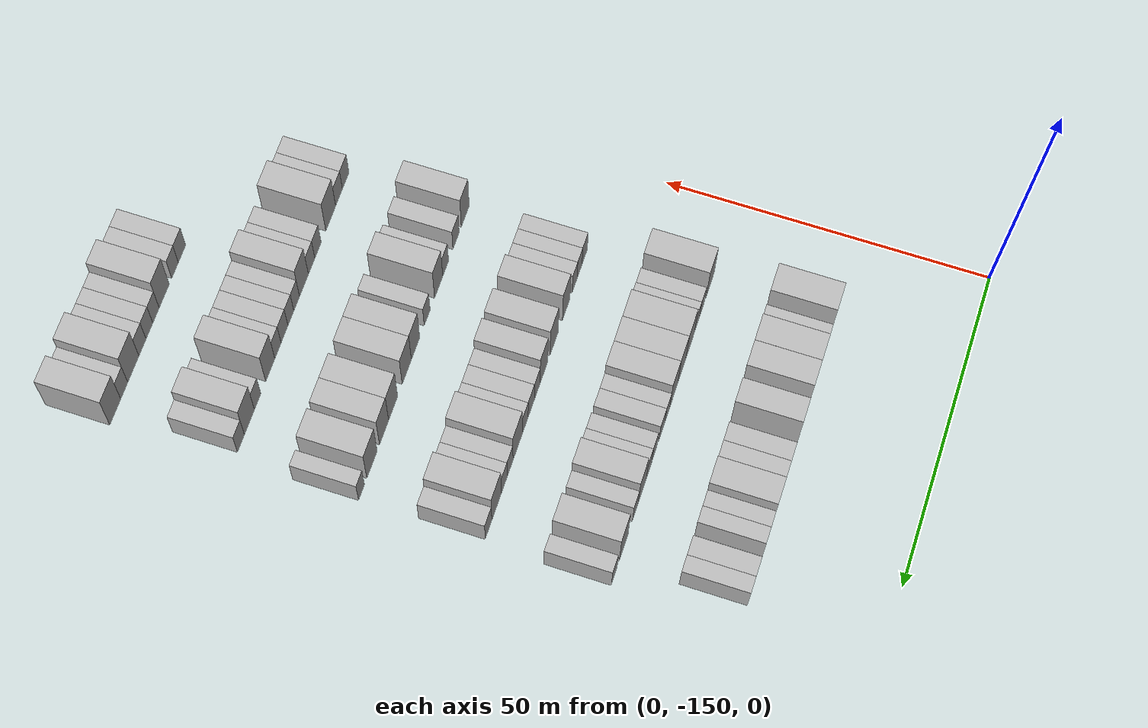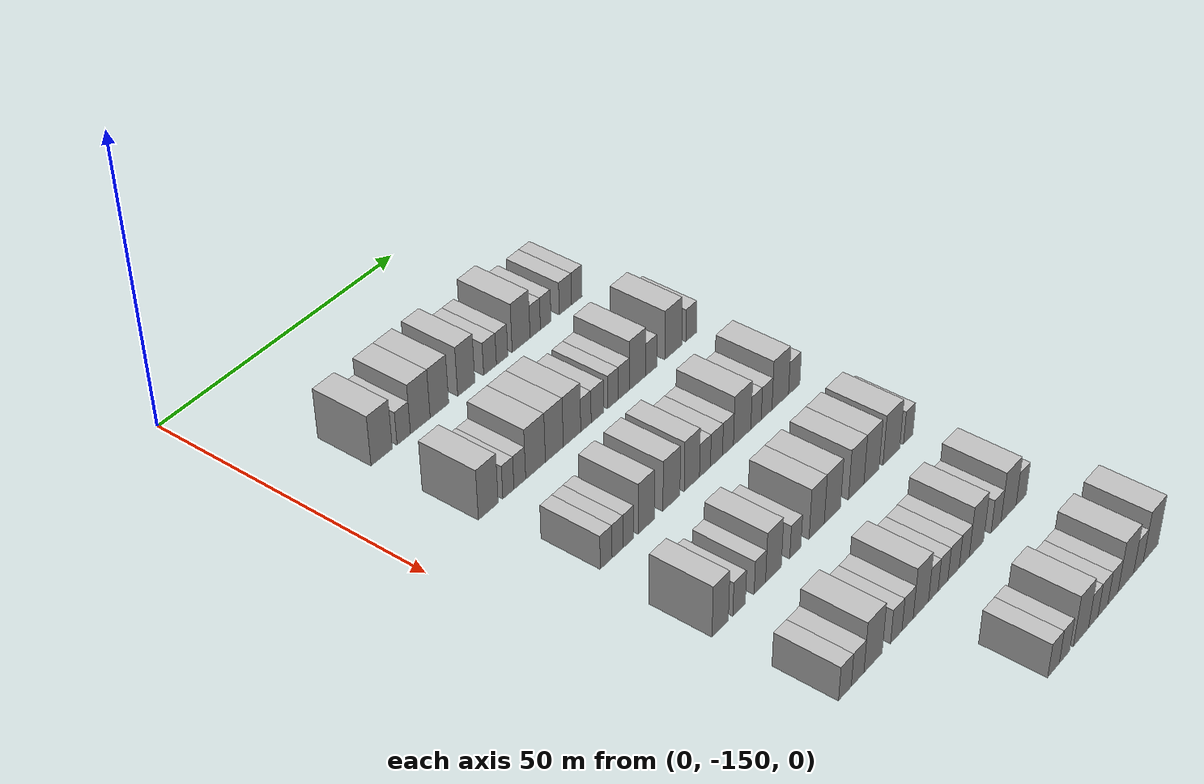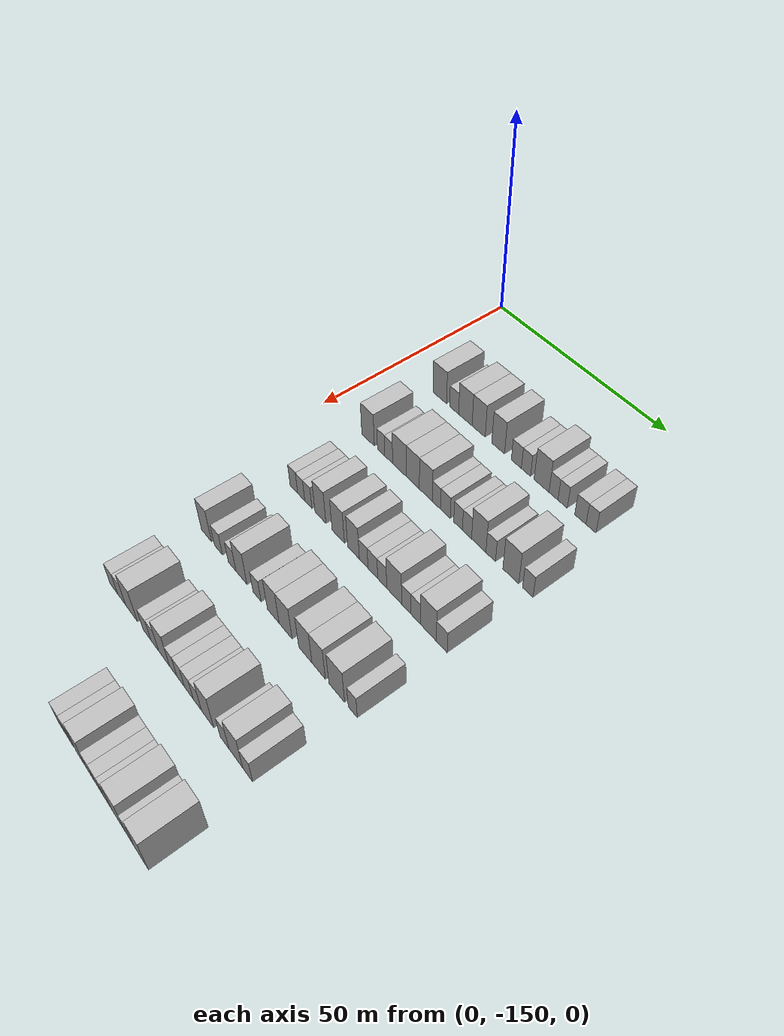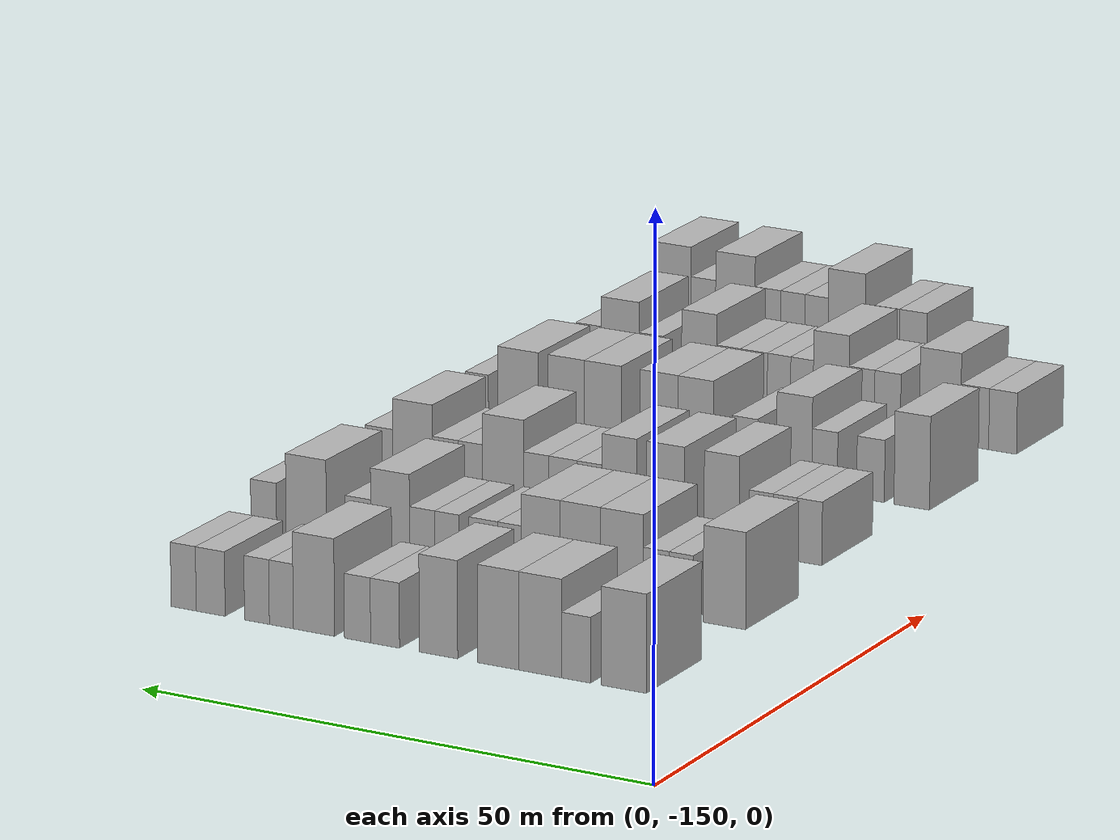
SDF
<sdf version="1.6">
 <world name="default">
  <model name="building_47">
   <static>1</static>
   <pose>25.0000 -136.1746 0 0.000000 0.000000 0.000000</pose>
   <link name="link">
    <pose>0 0 4.50 0 0 0</pose>
    <collision name="collision"><geometry><box><size>10.0000 4.4687 9.0000</size></box></geometry></collision>
    <visual name="visual">
     <cast_shadows>0</cast_shadows>
     <geometry><box><size>10.0000 4.4687 9.0000</size></box></geometry>
     <material>
      <script>
       <uri>model://HANNAS_wall/materials/scripts</uri>
       <uri>model://HANNAS_wall/materials/textures</uri>
       <name>vrc/HANNAS_wall</name>
      </script>
     </material>
    </visual>
   </link>
  </model>
  <model name="building_48">
   <static>1</static>
   <pose>25.0000 -131.5015 0 0.000000 0.000000 0.000000</pose>
   <link name="link">
    <pose>0 0 3.00 0 0 0</pose>
    <collision name="collision"><geometry><box><size>10.0000 2.8775 6.0000</size></box></geometry></collision>
    <visual name="visual">
     <cast_shadows>0</cast_shadows>
     <geometry><box><size>10.0000 2.8775 6.0000</size></box></geometry>
     <material>
      <script>
       <uri>model://HANNAS_wall/materials/scripts</uri>
       <uri>model://HANNAS_wall/materials/textures</uri>
       <name>vrc/HANNAS_wall</name>
      </script>
     </material>
    </visual>
   </link>
  </model>
  <model name="building_49">
   <static>1</static>
   <pose>25.0000 -127.9309 0 0.000000 0.000000 0.000000</pose>
   <link name="link">
    <pose>0 0 4.50 0 0 0</pose>
    <collision name="collision"><geometry><box><size>10.0000 4.2637 9.0000</size></box></geometry></collision>
    <visual name="visual">
     <cast_shadows>0</cast_shadows>
     <geometry><box><size>10.0000 4.2637 9.0000</size></box></geometry>
     <material>
      <script>
       <uri>model://HANNAS_wall/materials/scripts</uri>
       <uri>model://HANNAS_wall/materials/textures</uri>
       <name>vrc/HANNAS_wall</name>
      </script>
     </material>
    </visual>
   </link>
  </model>
  <model name="building_50">
   <static>1</static>
   <pose>25.0000 -123.7651 0 0.000000 0.000000 0.000000</pose>
   <link name="link">
    <pose>0 0 4.50 0 0 0</pose>
    <collision name="collision"><geometry><box><size>10.0000 4.0677 9.0000</size></box></geometry></collision>
    <visual name="visual">
     <cast_shadows>0</cast_shadows>
     <geometry><box><size>10.0000 4.0677 9.0000</size></box></geometry>
     <material>
      <script>
       <uri>model://HANNAS_wall/materials/scripts</uri>
       <uri>model://HANNAS_wall/materials/textures</uri>
       <name>vrc/HANNAS_wall</name>
      </script>
     </material>
    </visual>
   </link>
  </model>
  <model name="building_51">
   <static>1</static>
   <pose>25.0000 -117.8076 0 0.000000 0.000000 0.000000</pose>
   <link name="link">
    <pose>0 0 4.50 0 0 0</pose>
    <collision name="collision"><geometry><box><size>10.0000 3.8474 9.0000</size></box></geometry></collision>
    <visual name="visual">
     <cast_shadows>0</cast_shadows>
     <geometry><box><size>10.0000 3.8474 9.0000</size></box></geometry>
     <material>
      <script>
       <uri>model://HANNAS_wall/materials/scripts</uri>
       <uri>model://HANNAS_wall/materials/textures</uri>
       <name>vrc/HANNAS_wall</name>
      </script>
     </material>
    </visual>
   </link>
  </model>
  <model name="building_52">
   <static>1</static>
   <pose>25.0000 -112.4222 0 0.000000 0.000000 0.000000</pose>
   <link name="link">
    <pose>0 0 3.00 0 0 0</pose>
    <collision name="collision"><geometry><box><size>10.0000 2.9233 6.0000</size></box></geometry></collision>
    <visual name="visual">
     <cast_shadows>0</cast_shadows>
     <geometry><box><size>10.0000 2.9233 6.0000</size></box></geometry>
     <material>
      <script>
       <uri>model://HANNAS_wall/materials/scripts</uri>
       <uri>model://HANNAS_wall/materials/textures</uri>
       <name>vrc/HANNAS_wall</name>
      </script>
     </material>
    </visual>
   </link>
  </model>
  <model name="building_53">
   <static>1</static>
   <pose>25.0000 -109.6368 0 0.000000 0.000000 0.000000</pose>
   <link name="link">
    <pose>0 0 3.00 0 0 0</pose>
    <collision name="collision"><geometry><box><size>10.0000 2.6475 6.0000</size></box></geometry></collision>
    <visual name="visual">
     <cast_shadows>0</cast_shadows>
     <geometry><box><size>10.0000 2.6475 6.0000</size></box></geometry>
     <material>
      <script>
       <uri>model://HANNAS_wall/materials/scripts</uri>
       <uri>model://HANNAS_wall/materials/textures</uri>
       <name>vrc/HANNAS_wall</name>
      </script>
     </material>
    </visual>
   </link>
  </model>
  <model name="building_54">
   <static>1</static>
   <pose>25.0000 -105.2102 0 0.000000 0.000000 0.000000</pose>
   <link name="link">
    <pose>0 0 4.50 0 0 0</pose>
    <collision name="collision"><geometry><box><size>10.0000 4.2057 9.0000</size></box></geometry></collision>
    <visual name="visual">
     <cast_shadows>0</cast_shadows>
     <geometry><box><size>10.0000 4.2057 9.0000</size></box></geometry>
     <material>
      <script>
       <uri>model://HANNAS_wall/materials/scripts</uri>
       <uri>model://HANNAS_wall/materials/textures</uri>
       <name>vrc/HANNAS_wall</name>
      </script>
     </material>
    </visual>
   </link>
  </model>
  <model name="building_55">
   <static>1</static>
   <pose>25.0000 -101.8766 0 0.000000 0.000000 0.000000</pose>
   <link name="link">
    <pose>0 0 3.00 0 0 0</pose>
    <collision name="collision"><geometry><box><size>10.0000 2.4616 6.0000</size></box></geometry></collision>
    <visual name="visual">
     <cast_shadows>0</cast_shadows>
     <geometry><box><size>10.0000 2.4616 6.0000</size></box></geometry>
     <material>
      <script>
       <uri>model://HANNAS_wall/materials/scripts</uri>
       <uri>model://HANNAS_wall/materials/textures</uri>
       <name>vrc/HANNAS_wall</name>
      </script>
     </material>
    </visual>
   </link>
  </model>
  <model name="building_56">
   <static>1</static>
   <pose>25.0000 -99.3721 0 0.000000 0.000000 0.000000</pose>
   <link name="link">
    <pose>0 0 3.00 0 0 0</pose>
    <collision name="collision"><geometry><box><size>10.0000 2.5473 6.0000</size></box></geometry></collision>
    <visual name="visual">
     <cast_shadows>0</cast_shadows>
     <geometry><box><size>10.0000 2.5473 6.0000</size></box></geometry>
     <material>
      <script>
       <uri>model://HANNAS_wall/materials/scripts</uri>
       <uri>model://HANNAS_wall/materials/textures</uri>
       <name>vrc/HANNAS_wall</name>
      </script>
     </material>
    </visual>
   </link>
  </model>
  <model name="building_57">
   <static>1</static>
   <pose>25.0000 -94.6043 0 0.000000 0.000000 0.000000</pose>
   <link name="link">
    <pose>0 0 3.00 0 0 0</pose>
    <collision name="collision"><geometry><box><size>10.0000 2.9883 6.0000</size></box></geometry></collision>
    <visual name="visual">
     <cast_shadows>0</cast_shadows>
     <geometry><box><size>10.0000 2.9883 6.0000</size></box></geometry>
     <material>
      <script>
       <uri>model://HANNAS_wall/materials/scripts</uri>
       <uri>model://HANNAS_wall/materials/textures</uri>
       <name>vrc/HANNAS_wall</name>
      </script>
     </material>
    </visual>
   </link>
  </model>
  <model name="building_58">
   <static>1</static>
   <pose>25.0000 -91.8131 0 0.000000 0.000000 0.000000</pose>
   <link name="link">
    <pose>0 0 3.00 0 0 0</pose>
    <collision name="collision"><geometry><box><size>10.0000 2.5943 6.0000</size></box></geometry></collision>
    <visual name="visual">
     <cast_shadows>0</cast_shadows>
     <geometry><box><size>10.0000 2.5943 6.0000</size></box></geometry>
     <material>
      <script>
       <uri>model://HANNAS_wall/materials/scripts</uri>
       <uri>model://HANNAS_wall/materials/textures</uri>
       <name>vrc/HANNAS_wall</name>
      </script>
     </material>
    </visual>
   </link>
  </model>
  <model name="building_231">
   <static>1</static>
   <pose>44.0000 -135.8813 0 0.000000 0.000000 0.000000</pose>
   <link name="link">
    <pose>0 0 4.50 0 0 0</pose>
    <collision name="collision"><geometry><box><size>10.0000 4.2236 9.0000</size></box></geometry></collision>
    <visual name="visual">
     <cast_shadows>0</cast_shadows>
     <geometry><box><size>10.0000 4.2236 9.0000</size></box></geometry>
     <material>
      <script>
       <uri>model://HANNAS_wall/materials/scripts</uri>
       <uri>model://HANNAS_wall/materials/textures</uri>
       <name>vrc/HANNAS_wall</name>
      </script>
     </material>
    </visual>
   </link>
  </model>
  <model name="building_232">
   <static>1</static>
   <pose>44.0000 -131.5618 0 0.000000 0.000000 0.000000</pose>
   <link name="link">
    <pose>0 0 3.00 0 0 0</pose>
    <collision name="collision"><geometry><box><size>10.0000 2.4153 6.0000</size></box></geometry></collision>
    <visual name="visual">
     <cast_shadows>0</cast_shadows>
     <geometry><box><size>10.0000 2.4153 6.0000</size></box></geometry>
     <material>
      <script>
       <uri>model://HANNAS_wall/materials/scripts</uri>
       <uri>model://HANNAS_wall/materials/textures</uri>
       <name>vrc/HANNAS_wall</name>
      </script>
     </material>
    </visual>
   </link>
  </model>
  <model name="building_233">
   <static>1</static>
   <pose>44.0000 -129.0688 0 0.000000 0.000000 0.000000</pose>
   <link name="link">
    <pose>0 0 3.00 0 0 0</pose>
    <collision name="collision"><geometry><box><size>10.0000 2.5708 6.0000</size></box></geometry></collision>
    <visual name="visual">
     <cast_shadows>0</cast_shadows>
     <geometry><box><size>10.0000 2.5708 6.0000</size></box></geometry>
     <material>
      <script>
       <uri>model://HANNAS_wall/materials/scripts</uri>
       <uri>model://HANNAS_wall/materials/textures</uri>
       <name>vrc/HANNAS_wall</name>
      </script>
     </material>
    </visual>
   </link>
  </model>
  <model name="building_234">
   <static>1</static>
   <pose>44.0000 -125.5930 0 0.000000 0.000000 0.000000</pose>
   <link name="link">
    <pose>0 0 4.50 0 0 0</pose>
    <collision name="collision"><geometry><box><size>10.0000 4.3806 9.0000</size></box></geometry></collision>
    <visual name="visual">
     <cast_shadows>0</cast_shadows>
     <geometry><box><size>10.0000 4.3806 9.0000</size></box></geometry>
     <material>
      <script>
       <uri>model://HANNAS_wall/materials/scripts</uri>
       <uri>model://HANNAS_wall/materials/textures</uri>
       <name>vrc/HANNAS_wall</name>
      </script>
     </material>
    </visual>
   </link>
  </model>
  <model name="building_235">
   <static>1</static>
   <pose>44.0000 -121.3850 0 0.000000 0.000000 0.000000</pose>
   <link name="link">
    <pose>0 0 4.50 0 0 0</pose>
    <collision name="collision"><geometry><box><size>10.0000 4.0355 9.0000</size></box></geometry></collision>
    <visual name="visual">
     <cast_shadows>0</cast_shadows>
     <geometry><box><size>10.0000 4.0355 9.0000</size></box></geometry>
     <material>
      <script>
       <uri>model://HANNAS_wall/materials/scripts</uri>
       <uri>model://HANNAS_wall/materials/textures</uri>
       <name>vrc/HANNAS_wall</name>
      </script>
     </material>
    </visual>
   </link>
  </model>
  <model name="building_236">
   <static>1</static>
   <pose>44.0000 -117.3735 0 0.000000 0.000000 0.000000</pose>
   <link name="link">
    <pose>0 0 4.50 0 0 0</pose>
    <collision name="collision"><geometry><box><size>10.0000 3.9875 9.0000</size></box></geometry></collision>
    <visual name="visual">
     <cast_shadows>0</cast_shadows>
     <geometry><box><size>10.0000 3.9875 9.0000</size></box></geometry>
     <material>
      <script>
       <uri>model://HANNAS_wall/materials/scripts</uri>
       <uri>model://HANNAS_wall/materials/textures</uri>
       <name>vrc/HANNAS_wall</name>
      </script>
     </material>
    </visual>
   </link>
  </model>
  <model name="building_237">
   <static>1</static>
   <pose>44.0000 -114.1772 0 0.000000 0.000000 0.000000</pose>
   <link name="link">
    <pose>0 0 3.00 0 0 0</pose>
    <collision name="collision"><geometry><box><size>10.0000 2.4051 6.0000</size></box></geometry></collision>
    <visual name="visual">
     <cast_shadows>0</cast_shadows>
     <geometry><box><size>10.0000 2.4051 6.0000</size></box></geometry>
     <material>
      <script>
       <uri>model://HANNAS_wall/materials/scripts</uri>
       <uri>model://HANNAS_wall/materials/textures</uri>
       <name>vrc/HANNAS_wall</name>
      </script>
     </material>
    </visual>
   </link>
  </model>
  <model name="building_238">
   <static>1</static>
   <pose>44.0000 -111.5134 0 0.000000 0.000000 0.000000</pose>
   <link name="link">
    <pose>0 0 3.00 0 0 0</pose>
    <collision name="collision"><geometry><box><size>10.0000 2.9225 6.0000</size></box></geometry></collision>
    <visual name="visual">
     <cast_shadows>0</cast_shadows>
     <geometry><box><size>10.0000 2.9225 6.0000</size></box></geometry>
     <material>
      <script>
       <uri>model://HANNAS_wall/materials/scripts</uri>
       <uri>model://HANNAS_wall/materials/textures</uri>
       <name>vrc/HANNAS_wall</name>
      </script>
     </material>
    </visual>
   </link>
  </model>
  <model name="building_239">
   <static>1</static>
   <pose>44.0000 -107.8048 0 0.000000 0.000000 0.000000</pose>
   <link name="link">
    <pose>0 0 3.00 0 0 0</pose>
    <collision name="collision"><geometry><box><size>10.0000 2.4946 6.0000</size></box></geometry></collision>
    <visual name="visual">
     <cast_shadows>0</cast_shadows>
     <geometry><box><size>10.0000 2.4946 6.0000</size></box></geometry>
     <material>
      <script>
       <uri>model://HANNAS_wall/materials/scripts</uri>
       <uri>model://HANNAS_wall/materials/textures</uri>
       <name>vrc/HANNAS_wall</name>
      </script>
     </material>
    </visual>
   </link>
  </model>
  <model name="building_240">
   <static>1</static>
   <pose>44.0000 -105.2405 0 0.000000 0.000000 0.000000</pose>
   <link name="link">
    <pose>0 0 3.00 0 0 0</pose>
    <collision name="collision"><geometry><box><size>10.0000 2.6340 6.0000</size></box></geometry></collision>
    <visual name="visual">
     <cast_shadows>0</cast_shadows>
     <geometry><box><size>10.0000 2.6340 6.0000</size></box></geometry>
     <material>
      <script>
       <uri>model://HANNAS_wall/materials/scripts</uri>
       <uri>model://HANNAS_wall/materials/textures</uri>
       <name>vrc/HANNAS_wall</name>
      </script>
     </material>
    </visual>
   </link>
  </model>
  <model name="building_241">
   <static>1</static>
   <pose>44.0000 -101.9137 0 0.000000 0.000000 0.000000</pose>
   <link name="link">
    <pose>0 0 4.50 0 0 0</pose>
    <collision name="collision"><geometry><box><size>10.0000 4.0194 9.0000</size></box></geometry></collision>
    <visual name="visual">
     <cast_shadows>0</cast_shadows>
     <geometry><box><size>10.0000 4.0194 9.0000</size></box></geometry>
     <material>
      <script>
       <uri>model://HANNAS_wall/materials/scripts</uri>
       <uri>model://HANNAS_wall/materials/textures</uri>
       <name>vrc/HANNAS_wall</name>
      </script>
     </material>
    </visual>
   </link>
  </model>
  <model name="building_242">
   <static>1</static>
   <pose>44.0000 -98.5847 0 0.000000 0.000000 0.000000</pose>
   <link name="link">
    <pose>0 0 3.00 0 0 0</pose>
    <collision name="collision"><geometry><box><size>10.0000 2.6387 6.0000</size></box></geometry></collision>
    <visual name="visual">
     <cast_shadows>0</cast_shadows>
     <geometry><box><size>10.0000 2.6387 6.0000</size></box></geometry>
     <material>
      <script>
       <uri>model://HANNAS_wall/materials/scripts</uri>
       <uri>model://HANNAS_wall/materials/textures</uri>
       <name>vrc/HANNAS_wall</name>
      </script>
     </material>
    </visual>
   </link>
  </model>
  <model name="building_243">
   <static>1</static>
   <pose>44.0000 -93.1488 0 0.000000 0.000000 0.000000</pose>
   <link name="link">
    <pose>0 0 4.50 0 0 0</pose>
    <collision name="collision"><geometry><box><size>10.0000 4.2332 9.0000</size></box></geometry></collision>
    <visual name="visual">
     <cast_shadows>0</cast_shadows>
     <geometry><box><size>10.0000 4.2332 9.0000</size></box></geometry>
     <material>
      <script>
       <uri>model://HANNAS_wall/materials/scripts</uri>
       <uri>model://HANNAS_wall/materials/textures</uri>
       <name>vrc/HANNAS_wall</name>
      </script>
     </material>
    </visual>
   </link>
  </model>
  <model name="building_244">
   <static>1</static>
   <pose>44.0000 -88.6784 0 0.000000 0.000000 0.000000</pose>
   <link name="link">
    <pose>0 0 3.00 0 0 0</pose>
    <collision name="collision"><geometry><box><size>10.0000 2.7074 6.0000</size></box></geometry></collision>
    <visual name="visual">
     <cast_shadows>0</cast_shadows>
     <geometry><box><size>10.0000 2.7074 6.0000</size></box></geometry>
     <material>
      <script>
       <uri>model://HANNAS_wall/materials/scripts</uri>
       <uri>model://HANNAS_wall/materials/textures</uri>
       <name>vrc/HANNAS_wall</name>
      </script>
     </material>
    </visual>
   </link>
  </model>
  <model name="building_391">
   <static>1</static>
   <pose>63.0000 -134.4250 0 0.000000 0.000000 0.000000</pose>
   <link name="link">
    <pose>0 0 3.00 0 0 0</pose>
    <collision name="collision"><geometry><box><size>10.0000 2.5891 6.0000</size></box></geometry></collision>
    <visual name="visual">
     <cast_shadows>0</cast_shadows>
     <geometry><box><size>10.0000 2.5891 6.0000</size></box></geometry>
     <material>
      <script>
       <uri>model://HANNAS_wall/materials/scripts</uri>
       <uri>model://HANNAS_wall/materials/textures</uri>
       <name>vrc/HANNAS_wall</name>
      </script>
     </material>
    </visual>
   </link>
  </model>
  <model name="building_392">
   <static>1</static>
   <pose>63.0000 -131.9280 0 0.000000 0.000000 0.000000</pose>
   <link name="link">
    <pose>0 0 3.00 0 0 0</pose>
    <collision name="collision"><geometry><box><size>10.0000 2.4050 6.0000</size></box></geometry></collision>
    <visual name="visual">
     <cast_shadows>0</cast_shadows>
     <geometry><box><size>10.0000 2.4050 6.0000</size></box></geometry>
     <material>
      <script>
       <uri>model://HANNAS_wall/materials/scripts</uri>
       <uri>model://HANNAS_wall/materials/textures</uri>
       <name>vrc/HANNAS_wall</name>
      </script>
     </material>
    </visual>
   </link>
  </model>
  <model name="building_393">
   <static>1</static>
   <pose>63.0000 -129.5147 0 0.000000 0.000000 0.000000</pose>
   <link name="link">
    <pose>0 0 3.00 0 0 0</pose>
    <collision name="collision"><geometry><box><size>10.0000 2.4215 6.0000</size></box></geometry></collision>
    <visual name="visual">
     <cast_shadows>0</cast_shadows>
     <geometry><box><size>10.0000 2.4215 6.0000</size></box></geometry>
     <material>
      <script>
       <uri>model://HANNAS_wall/materials/scripts</uri>
       <uri>model://HANNAS_wall/materials/textures</uri>
       <name>vrc/HANNAS_wall</name>
      </script>
     </material>
    </visual>
   </link>
  </model>
  <model name="building_394">
   <static>1</static>
   <pose>63.0000 -125.5038 0 0.000000 0.000000 0.000000</pose>
   <link name="link">
    <pose>0 0 4.50 0 0 0</pose>
    <collision name="collision"><geometry><box><size>10.0000 3.6003 9.0000</size></box></geometry></collision>
    <visual name="visual">
     <cast_shadows>0</cast_shadows>
     <geometry><box><size>10.0000 3.6003 9.0000</size></box></geometry>
     <material>
      <script>
       <uri>model://HANNAS_wall/materials/scripts</uri>
       <uri>model://HANNAS_wall/materials/textures</uri>
       <name>vrc/HANNAS_wall</name>
      </script>
     </material>
    </visual>
   </link>
  </model>
  <model name="building_395">
   <static>1</static>
   <pose>63.0000 -119.7378 0 0.000000 0.000000 0.000000</pose>
   <link name="link">
    <pose>0 0 4.50 0 0 0</pose>
    <collision name="collision"><geometry><box><size>10.0000 3.9316 9.0000</size></box></geometry></collision>
    <visual name="visual">
     <cast_shadows>0</cast_shadows>
     <geometry><box><size>10.0000 3.9316 9.0000</size></box></geometry>
     <material>
      <script>
       <uri>model://HANNAS_wall/materials/scripts</uri>
       <uri>model://HANNAS_wall/materials/textures</uri>
       <name>vrc/HANNAS_wall</name>
      </script>
     </material>
    </visual>
   </link>
  </model>
  <model name="building_396">
   <static>1</static>
   <pose>63.0000 -114.9706 0 0.000000 0.000000 0.000000</pose>
   <link name="link">
    <pose>0 0 4.50 0 0 0</pose>
    <collision name="collision"><geometry><box><size>10.0000 3.6030 9.0000</size></box></geometry></collision>
    <visual name="visual">
     <cast_shadows>0</cast_shadows>
     <geometry><box><size>10.0000 3.6030 9.0000</size></box></geometry>
     <material>
      <script>
       <uri>model://HANNAS_wall/materials/scripts</uri>
       <uri>model://HANNAS_wall/materials/textures</uri>
       <name>vrc/HANNAS_wall</name>
      </script>
     </material>
    </visual>
   </link>
  </model>
  <model name="building_397">
   <static>1</static>
   <pose>63.0000 -111.8527 0 0.000000 0.000000 0.000000</pose>
   <link name="link">
    <pose>0 0 3.00 0 0 0</pose>
    <collision name="collision"><geometry><box><size>10.0000 2.6327 6.0000</size></box></geometry></collision>
    <visual name="visual">
     <cast_shadows>0</cast_shadows>
     <geometry><box><size>10.0000 2.6327 6.0000</size></box></geometry>
     <material>
      <script>
       <uri>model://HANNAS_wall/materials/scripts</uri>
       <uri>model://HANNAS_wall/materials/textures</uri>
       <name>vrc/HANNAS_wall</name>
      </script>
     </material>
    </visual>
   </link>
  </model>
  <model name="building_398">
   <static>1</static>
   <pose>63.0000 -109.0857 0 0.000000 0.000000 0.000000</pose>
   <link name="link">
    <pose>0 0 3.00 0 0 0</pose>
    <collision name="collision"><geometry><box><size>10.0000 2.9013 6.0000</size></box></geometry></collision>
    <visual name="visual">
     <cast_shadows>0</cast_shadows>
     <geometry><box><size>10.0000 2.9013 6.0000</size></box></geometry>
     <material>
      <script>
       <uri>model://HANNAS_wall/materials/scripts</uri>
       <uri>model://HANNAS_wall/materials/textures</uri>
       <name>vrc/HANNAS_wall</name>
      </script>
     </material>
    </visual>
   </link>
  </model>
  <model name="building_399">
   <static>1</static>
   <pose>63.0000 -106.3085 0 0.000000 0.000000 0.000000</pose>
   <link name="link">
    <pose>0 0 3.00 0 0 0</pose>
    <collision name="collision"><geometry><box><size>10.0000 2.6530 6.0000</size></box></geometry></collision>
    <visual name="visual">
     <cast_shadows>0</cast_shadows>
     <geometry><box><size>10.0000 2.6530 6.0000</size></box></geometry>
     <material>
      <script>
       <uri>model://HANNAS_wall/materials/scripts</uri>
       <uri>model://HANNAS_wall/materials/textures</uri>
       <name>vrc/HANNAS_wall</name>
      </script>
     </material>
    </visual>
   </link>
  </model>
  <model name="building_400">
   <static>1</static>
   <pose>63.0000 -102.8347 0 0.000000 0.000000 0.000000</pose>
   <link name="link">
    <pose>0 0 4.50 0 0 0</pose>
    <collision name="collision"><geometry><box><size>10.0000 4.2946 9.0000</size></box></geometry></collision>
    <visual name="visual">
     <cast_shadows>0</cast_shadows>
     <geometry><box><size>10.0000 4.2946 9.0000</size></box></geometry>
     <material>
      <script>
       <uri>model://HANNAS_wall/materials/scripts</uri>
       <uri>model://HANNAS_wall/materials/textures</uri>
       <name>vrc/HANNAS_wall</name>
      </script>
     </material>
    </visual>
   </link>
  </model>
  <model name="building_401">
   <static>1</static>
   <pose>63.0000 -99.3781 0 0.000000 0.000000 0.000000</pose>
   <link name="link">
    <pose>0 0 3.00 0 0 0</pose>
    <collision name="collision"><geometry><box><size>10.0000 2.6185 6.0000</size></box></geometry></collision>
    <visual name="visual">
     <cast_shadows>0</cast_shadows>
     <geometry><box><size>10.0000 2.6185 6.0000</size></box></geometry>
     <material>
      <script>
       <uri>model://HANNAS_wall/materials/scripts</uri>
       <uri>model://HANNAS_wall/materials/textures</uri>
       <name>vrc/HANNAS_wall</name>
      </script>
     </material>
    </visual>
   </link>
  </model>
  <model name="building_402">
   <static>1</static>
   <pose>63.0000 -96.7208 0 0.000000 0.000000 0.000000</pose>
   <link name="link">
    <pose>0 0 3.00 0 0 0</pose>
    <collision name="collision"><geometry><box><size>10.0000 2.6960 6.0000</size></box></geometry></collision>
    <visual name="visual">
     <cast_shadows>0</cast_shadows>
     <geometry><box><size>10.0000 2.6960 6.0000</size></box></geometry>
     <material>
      <script>
       <uri>model://HANNAS_wall/materials/scripts</uri>
       <uri>model://HANNAS_wall/materials/textures</uri>
       <name>vrc/HANNAS_wall</name>
      </script>
     </material>
    </visual>
   </link>
  </model>
  <model name="building_403">
   <static>1</static>
   <pose>63.0000 -93.2519 0 0.000000 0.000000 0.000000</pose>
   <link name="link">
    <pose>0 0 4.50 0 0 0</pose>
    <collision name="collision"><geometry><box><size>10.0000 4.2417 9.0000</size></box></geometry></collision>
    <visual name="visual">
     <cast_shadows>0</cast_shadows>
     <geometry><box><size>10.0000 4.2417 9.0000</size></box></geometry>
     <material>
      <script>
       <uri>model://HANNAS_wall/materials/scripts</uri>
       <uri>model://HANNAS_wall/materials/textures</uri>
       <name>vrc/HANNAS_wall</name>
      </script>
     </material>
    </visual>
   </link>
  </model>
  <model name="building_404">
   <static>1</static>
   <pose>63.0000 -89.6615 0 0.000000 0.000000 0.000000</pose>
   <link name="link">
    <pose>0 0 3.00 0 0 0</pose>
    <collision name="collision"><geometry><box><size>10.0000 2.9391 6.0000</size></box></geometry></collision>
    <visual name="visual">
     <cast_shadows>0</cast_shadows>
     <geometry><box><size>10.0000 2.9391 6.0000</size></box></geometry>
     <material>
      <script>
       <uri>model://HANNAS_wall/materials/scripts</uri>
       <uri>model://HANNAS_wall/materials/textures</uri>
       <name>vrc/HANNAS_wall</name>
      </script>
     </material>
    </visual>
   </link>
  </model>
  <model name="building_579">
   <static>1</static>
   <pose>82.0000 -135.1922 0 0.000000 0.000000 0.000000</pose>
   <link name="link">
    <pose>0 0 4.50 0 0 0</pose>
    <collision name="collision"><geometry><box><size>10.0000 3.6546 9.0000</size></box></geometry></collision>
    <visual name="visual">
     <cast_shadows>0</cast_shadows>
     <geometry><box><size>10.0000 3.6546 9.0000</size></box></geometry>
     <material>
      <script>
       <uri>model://HANNAS_wall/materials/scripts</uri>
       <uri>model://HANNAS_wall/materials/textures</uri>
       <name>vrc/HANNAS_wall</name>
      </script>
     </material>
    </visual>
   </link>
  </model>
  <model name="building_580">
   <static>1</static>
   <pose>82.0000 -130.9351 0 0.000000 0.000000 0.000000</pose>
   <link name="link">
    <pose>0 0 3.00 0 0 0</pose>
    <collision name="collision"><geometry><box><size>10.0000 2.8596 6.0000</size></box></geometry></collision>
    <visual name="visual">
     <cast_shadows>0</cast_shadows>
     <geometry><box><size>10.0000 2.8596 6.0000</size></box></geometry>
     <material>
      <script>
       <uri>model://HANNAS_wall/materials/scripts</uri>
       <uri>model://HANNAS_wall/materials/textures</uri>
       <name>vrc/HANNAS_wall</name>
      </script>
     </material>
    </visual>
   </link>
  </model>
  <model name="building_581">
   <static>1</static>
   <pose>82.0000 -126.1864 0 0.000000 0.000000 0.000000</pose>
   <link name="link">
    <pose>0 0 3.00 0 0 0</pose>
    <collision name="collision"><geometry><box><size>10.0000 2.6378 6.0000</size></box></geometry></collision>
    <visual name="visual">
     <cast_shadows>0</cast_shadows>
     <geometry><box><size>10.0000 2.6378 6.0000</size></box></geometry>
     <material>
      <script>
       <uri>model://HANNAS_wall/materials/scripts</uri>
       <uri>model://HANNAS_wall/materials/textures</uri>
       <name>vrc/HANNAS_wall</name>
      </script>
     </material>
    </visual>
   </link>
  </model>
  <model name="building_582">
   <static>1</static>
   <pose>82.0000 -123.0183 0 0.000000 0.000000 0.000000</pose>
   <link name="link">
    <pose>0 0 4.50 0 0 0</pose>
    <collision name="collision"><geometry><box><size>10.0000 3.6986 9.0000</size></box></geometry></collision>
    <visual name="visual">
     <cast_shadows>0</cast_shadows>
     <geometry><box><size>10.0000 3.6986 9.0000</size></box></geometry>
     <material>
      <script>
       <uri>model://HANNAS_wall/materials/scripts</uri>
       <uri>model://HANNAS_wall/materials/textures</uri>
       <name>vrc/HANNAS_wall</name>
      </script>
     </material>
    </visual>
   </link>
  </model>
  <model name="building_583">
   <static>1</static>
   <pose>82.0000 -117.8411 0 0.000000 0.000000 0.000000</pose>
   <link name="link">
    <pose>0 0 3.00 0 0 0</pose>
    <collision name="collision"><geometry><box><size>10.0000 2.6558 6.0000</size></box></geometry></collision>
    <visual name="visual">
     <cast_shadows>0</cast_shadows>
     <geometry><box><size>10.0000 2.6558 6.0000</size></box></geometry>
     <material>
      <script>
       <uri>model://HANNAS_wall/materials/scripts</uri>
       <uri>model://HANNAS_wall/materials/textures</uri>
       <name>vrc/HANNAS_wall</name>
      </script>
     </material>
    </visual>
   </link>
  </model>
  <model name="building_584">
   <static>1</static>
   <pose>82.0000 -112.6621 0 0.000000 0.000000 0.000000</pose>
   <link name="link">
    <pose>0 0 4.50 0 0 0</pose>
    <collision name="collision"><geometry><box><size>10.0000 3.7021 9.0000</size></box></geometry></collision>
    <visual name="visual">
     <cast_shadows>0</cast_shadows>
     <geometry><box><size>10.0000 3.7021 9.0000</size></box></geometry>
     <material>
      <script>
       <uri>model://HANNAS_wall/materials/scripts</uri>
       <uri>model://HANNAS_wall/materials/textures</uri>
       <name>vrc/HANNAS_wall</name>
      </script>
     </material>
    </visual>
   </link>
  </model>
  <model name="building_585">
   <static>1</static>
   <pose>82.0000 -108.7966 0 0.000000 0.000000 0.000000</pose>
   <link name="link">
    <pose>0 0 4.50 0 0 0</pose>
    <collision name="collision"><geometry><box><size>10.0000 4.0289 9.0000</size></box></geometry></collision>
    <visual name="visual">
     <cast_shadows>0</cast_shadows>
     <geometry><box><size>10.0000 4.0289 9.0000</size></box></geometry>
     <material>
      <script>
       <uri>model://HANNAS_wall/materials/scripts</uri>
       <uri>model://HANNAS_wall/materials/textures</uri>
       <name>vrc/HANNAS_wall</name>
      </script>
     </material>
    </visual>
   </link>
  </model>
  <model name="building_586">
   <static>1</static>
   <pose>82.0000 -102.8180 0 0.000000 0.000000 0.000000</pose>
   <link name="link">
    <pose>0 0 4.50 0 0 0</pose>
    <collision name="collision"><geometry><box><size>10.0000 3.9284 9.0000</size></box></geometry></collision>
    <visual name="visual">
     <cast_shadows>0</cast_shadows>
     <geometry><box><size>10.0000 3.9284 9.0000</size></box></geometry>
     <material>
      <script>
       <uri>model://HANNAS_wall/materials/scripts</uri>
       <uri>model://HANNAS_wall/materials/textures</uri>
       <name>vrc/HANNAS_wall</name>
      </script>
     </material>
    </visual>
   </link>
  </model>
  <model name="building_587">
   <static>1</static>
   <pose>82.0000 -98.8968 0 0.000000 0.000000 0.000000</pose>
   <link name="link">
    <pose>0 0 4.50 0 0 0</pose>
    <collision name="collision"><geometry><box><size>10.0000 3.9139 9.0000</size></box></geometry></collision>
    <visual name="visual">
     <cast_shadows>0</cast_shadows>
     <geometry><box><size>10.0000 3.9139 9.0000</size></box></geometry>
     <material>
      <script>
       <uri>model://HANNAS_wall/materials/scripts</uri>
       <uri>model://HANNAS_wall/materials/textures</uri>
       <name>vrc/HANNAS_wall</name>
      </script>
     </material>
    </visual>
   </link>
  </model>
  <model name="building_588">
   <static>1</static>
   <pose>82.0000 -93.7325 0 0.000000 0.000000 0.000000</pose>
   <link name="link">
    <pose>0 0 4.50 0 0 0</pose>
    <collision name="collision"><geometry><box><size>10.0000 4.4146 9.0000</size></box></geometry></collision>
    <visual name="visual">
     <cast_shadows>0</cast_shadows>
     <geometry><box><size>10.0000 4.4146 9.0000</size></box></geometry>
     <material>
      <script>
       <uri>model://HANNAS_wall/materials/scripts</uri>
       <uri>model://HANNAS_wall/materials/textures</uri>
       <name>vrc/HANNAS_wall</name>
      </script>
     </material>
    </visual>
   </link>
  </model>
  <model name="building_589">
   <static>1</static>
   <pose>82.0000 -89.2812 0 0.000000 0.000000 0.000000</pose>
   <link name="link">
    <pose>0 0 3.00 0 0 0</pose>
    <collision name="collision"><geometry><box><size>10.0000 2.4881 6.0000</size></box></geometry></collision>
    <visual name="visual">
     <cast_shadows>0</cast_shadows>
     <geometry><box><size>10.0000 2.4881 6.0000</size></box></geometry>
     <material>
      <script>
       <uri>model://HANNAS_wall/materials/scripts</uri>
       <uri>model://HANNAS_wall/materials/textures</uri>
       <name>vrc/HANNAS_wall</name>
      </script>
     </material>
    </visual>
   </link>
  </model>
  <model name="building_747">
   <static>1</static>
   <pose>101.0000 -135.1483 0 0.000000 0.000000 0.000000</pose>
   <link name="link">
    <pose>0 0 3.00 0 0 0</pose>
    <collision name="collision"><geometry><box><size>10.0000 2.9073 6.0000</size></box></geometry></collision>
    <visual name="visual">
     <cast_shadows>0</cast_shadows>
     <geometry><box><size>10.0000 2.9073 6.0000</size></box></geometry>
     <material>
      <script>
       <uri>model://HANNAS_wall/materials/scripts</uri>
       <uri>model://HANNAS_wall/materials/textures</uri>
       <name>vrc/HANNAS_wall</name>
      </script>
     </material>
    </visual>
   </link>
  </model>
  <model name="building_748">
   <static>1</static>
   <pose>101.0000 -132.2162 0 0.000000 0.000000 0.000000</pose>
   <link name="link">
    <pose>0 0 3.00 0 0 0</pose>
    <collision name="collision"><geometry><box><size>10.0000 2.9568 6.0000</size></box></geometry></collision>
    <visual name="visual">
     <cast_shadows>0</cast_shadows>
     <geometry><box><size>10.0000 2.9568 6.0000</size></box></geometry>
     <material>
      <script>
       <uri>model://HANNAS_wall/materials/scripts</uri>
       <uri>model://HANNAS_wall/materials/textures</uri>
       <name>vrc/HANNAS_wall</name>
      </script>
     </material>
    </visual>
   </link>
  </model>
  <model name="building_749">
   <static>1</static>
   <pose>101.0000 -128.5789 0 0.000000 0.000000 0.000000</pose>
   <link name="link">
    <pose>0 0 4.50 0 0 0</pose>
    <collision name="collision"><geometry><box><size>10.0000 4.3178 9.0000</size></box></geometry></collision>
    <visual name="visual">
     <cast_shadows>0</cast_shadows>
     <geometry><box><size>10.0000 4.3178 9.0000</size></box></geometry>
     <material>
      <script>
       <uri>model://HANNAS_wall/materials/scripts</uri>
       <uri>model://HANNAS_wall/materials/textures</uri>
       <name>vrc/HANNAS_wall</name>
      </script>
     </material>
    </visual>
   </link>
  </model>
  <model name="building_750">
   <static>1</static>
   <pose>101.0000 -123.0429 0 0.000000 0.000000 0.000000</pose>
   <link name="link">
    <pose>0 0 3.00 0 0 0</pose>
    <collision name="collision"><geometry><box><size>10.0000 2.7542 6.0000</size></box></geometry></collision>
    <visual name="visual">
     <cast_shadows>0</cast_shadows>
     <geometry><box><size>10.0000 2.7542 6.0000</size></box></geometry>
     <material>
      <script>
       <uri>model://HANNAS_wall/materials/scripts</uri>
       <uri>model://HANNAS_wall/materials/textures</uri>
       <name>vrc/HANNAS_wall</name>
      </script>
     </material>
    </visual>
   </link>
  </model>
  <model name="building_751">
   <static>1</static>
   <pose>101.0000 -120.2976 0 0.000000 0.000000 0.000000</pose>
   <link name="link">
    <pose>0 0 3.00 0 0 0</pose>
    <collision name="collision"><geometry><box><size>10.0000 2.7364 6.0000</size></box></geometry></collision>
    <visual name="visual">
     <cast_shadows>0</cast_shadows>
     <geometry><box><size>10.0000 2.7364 6.0000</size></box></geometry>
     <material>
      <script>
       <uri>model://HANNAS_wall/materials/scripts</uri>
       <uri>model://HANNAS_wall/materials/textures</uri>
       <name>vrc/HANNAS_wall</name>
      </script>
     </material>
    </visual>
   </link>
  </model>
  <model name="building_752">
   <static>1</static>
   <pose>101.0000 -117.0365 0 0.000000 0.000000 0.000000</pose>
   <link name="link">
    <pose>0 0 4.50 0 0 0</pose>
    <collision name="collision"><geometry><box><size>10.0000 3.7858 9.0000</size></box></geometry></collision>
    <visual name="visual">
     <cast_shadows>0</cast_shadows>
     <geometry><box><size>10.0000 3.7858 9.0000</size></box></geometry>
     <material>
      <script>
       <uri>model://HANNAS_wall/materials/scripts</uri>
       <uri>model://HANNAS_wall/materials/textures</uri>
       <name>vrc/HANNAS_wall</name>
      </script>
     </material>
    </visual>
   </link>
  </model>
  <model name="building_753">
   <static>1</static>
   <pose>101.0000 -113.9356 0 0.000000 0.000000 0.000000</pose>
   <link name="link">
    <pose>0 0 3.00 0 0 0</pose>
    <collision name="collision"><geometry><box><size>10.0000 2.4160 6.0000</size></box></geometry></collision>
    <visual name="visual">
     <cast_shadows>0</cast_shadows>
     <geometry><box><size>10.0000 2.4160 6.0000</size></box></geometry>
     <material>
      <script>
       <uri>model://HANNAS_wall/materials/scripts</uri>
       <uri>model://HANNAS_wall/materials/textures</uri>
       <name>vrc/HANNAS_wall</name>
      </script>
     </material>
    </visual>
   </link>
  </model>
  <model name="building_754">
   <static>1</static>
   <pose>101.0000 -111.4774 0 0.000000 0.000000 0.000000</pose>
   <link name="link">
    <pose>0 0 3.00 0 0 0</pose>
    <collision name="collision"><geometry><box><size>10.0000 2.5004 6.0000</size></box></geometry></collision>
    <visual name="visual">
     <cast_shadows>0</cast_shadows>
     <geometry><box><size>10.0000 2.5004 6.0000</size></box></geometry>
     <material>
      <script>
       <uri>model://HANNAS_wall/materials/scripts</uri>
       <uri>model://HANNAS_wall/materials/textures</uri>
       <name>vrc/HANNAS_wall</name>
      </script>
     </material>
    </visual>
   </link>
  </model>
  <model name="building_755">
   <static>1</static>
   <pose>101.0000 -108.7846 0 0.000000 0.000000 0.000000</pose>
   <link name="link">
    <pose>0 0 3.00 0 0 0</pose>
    <collision name="collision"><geometry><box><size>10.0000 2.8851 6.0000</size></box></geometry></collision>
    <visual name="visual">
     <cast_shadows>0</cast_shadows>
     <geometry><box><size>10.0000 2.8851 6.0000</size></box></geometry>
     <material>
      <script>
       <uri>model://HANNAS_wall/materials/scripts</uri>
       <uri>model://HANNAS_wall/materials/textures</uri>
       <name>vrc/HANNAS_wall</name>
      </script>
     </material>
    </visual>
   </link>
  </model>
  <model name="building_756">
   <static>1</static>
   <pose>101.0000 -106.0402 0 0.000000 0.000000 0.000000</pose>
   <link name="link">
    <pose>0 0 3.00 0 0 0</pose>
    <collision name="collision"><geometry><box><size>10.0000 2.6038 6.0000</size></box></geometry></collision>
    <visual name="visual">
     <cast_shadows>0</cast_shadows>
     <geometry><box><size>10.0000 2.6038 6.0000</size></box></geometry>
     <material>
      <script>
       <uri>model://HANNAS_wall/materials/scripts</uri>
       <uri>model://HANNAS_wall/materials/textures</uri>
       <name>vrc/HANNAS_wall</name>
      </script>
     </material>
    </visual>
   </link>
  </model>
  <model name="building_757">
   <static>1</static>
   <pose>101.0000 -102.8555 0 0.000000 0.000000 0.000000</pose>
   <link name="link">
    <pose>0 0 4.50 0 0 0</pose>
    <collision name="collision"><geometry><box><size>10.0000 3.7657 9.0000</size></box></geometry></collision>
    <visual name="visual">
     <cast_shadows>0</cast_shadows>
     <geometry><box><size>10.0000 3.7657 9.0000</size></box></geometry>
     <material>
      <script>
       <uri>model://HANNAS_wall/materials/scripts</uri>
       <uri>model://HANNAS_wall/materials/textures</uri>
       <name>vrc/HANNAS_wall</name>
      </script>
     </material>
    </visual>
   </link>
  </model>
  <model name="building_758">
   <static>1</static>
   <pose>101.0000 -97.6526 0 0.000000 0.000000 0.000000</pose>
   <link name="link">
    <pose>0 0 3.00 0 0 0</pose>
    <collision name="collision"><geometry><box><size>10.0000 2.6402 6.0000</size></box></geometry></collision>
    <visual name="visual">
     <cast_shadows>0</cast_shadows>
     <geometry><box><size>10.0000 2.6402 6.0000</size></box></geometry>
     <material>
      <script>
       <uri>model://HANNAS_wall/materials/scripts</uri>
       <uri>model://HANNAS_wall/materials/textures</uri>
       <name>vrc/HANNAS_wall</name>
      </script>
     </material>
    </visual>
   </link>
  </model>
  <model name="building_759">
   <static>1</static>
   <pose>101.0000 -94.2925 0 0.000000 0.000000 0.000000</pose>
   <link name="link">
    <pose>0 0 4.50 0 0 0</pose>
    <collision name="collision"><geometry><box><size>10.0000 4.0798 9.0000</size></box></geometry></collision>
    <visual name="visual">
     <cast_shadows>0</cast_shadows>
     <geometry><box><size>10.0000 4.0798 9.0000</size></box></geometry>
     <material>
      <script>
       <uri>model://HANNAS_wall/materials/scripts</uri>
       <uri>model://HANNAS_wall/materials/textures</uri>
       <name>vrc/HANNAS_wall</name>
      </script>
     </material>
    </visual>
   </link>
  </model>
  <model name="building_760">
   <static>1</static>
   <pose>101.0000 -90.8428 0 0.000000 0.000000 0.000000</pose>
   <link name="link">
    <pose>0 0 3.00 0 0 0</pose>
    <collision name="collision"><geometry><box><size>10.0000 2.8196 6.0000</size></box></geometry></collision>
    <visual name="visual">
     <cast_shadows>0</cast_shadows>
     <geometry><box><size>10.0000 2.8196 6.0000</size></box></geometry>
     <material>
      <script>
       <uri>model://HANNAS_wall/materials/scripts</uri>
       <uri>model://HANNAS_wall/materials/textures</uri>
       <name>vrc/HANNAS_wall</name>
      </script>
     </material>
    </visual>
   </link>
  </model>
  <model name="building_921">
   <static>1</static>
   <pose>120.0000 -116.1619 0 0.000000 0.000000 0.000000</pose>
   <link name="link">
    <pose>0 0 3.00 0 0 0</pose>
    <collision name="collision"><geometry><box><size>10.0000 2.9785 6.0000</size></box></geometry></collision>
    <visual name="visual">
     <cast_shadows>0</cast_shadows>
     <geometry><box><size>10.0000 2.9785 6.0000</size></box></geometry>
     <material>
      <script>
       <uri>model://HANNAS_wall/materials/scripts</uri>
       <uri>model://HANNAS_wall/materials/textures</uri>
       <name>vrc/HANNAS_wall</name>
      </script>
     </material>
    </visual>
   </link>
  </model>
  <model name="building_922">
   <static>1</static>
   <pose>120.0000 -113.3286 0 0.000000 0.000000 0.000000</pose>
   <link name="link">
    <pose>0 0 3.00 0 0 0</pose>
    <collision name="collision"><geometry><box><size>10.0000 2.6880 6.0000</size></box></geometry></collision>
    <visual name="visual">
     <cast_shadows>0</cast_shadows>
     <geometry><box><size>10.0000 2.6880 6.0000</size></box></geometry>
     <material>
      <script>
       <uri>model://HANNAS_wall/materials/scripts</uri>
       <uri>model://HANNAS_wall/materials/textures</uri>
       <name>vrc/HANNAS_wall</name>
      </script>
     </material>
    </visual>
   </link>
  </model>
  <model name="building_923">
   <static>1</static>
   <pose>120.0000 -108.9653 0 0.000000 0.000000 0.000000</pose>
   <link name="link">
    <pose>0 0 4.50 0 0 0</pose>
    <collision name="collision"><geometry><box><size>10.0000 4.0386 9.0000</size></box></geometry></collision>
    <visual name="visual">
     <cast_shadows>0</cast_shadows>
     <geometry><box><size>10.0000 4.0386 9.0000</size></box></geometry>
     <material>
      <script>
       <uri>model://HANNAS_wall/materials/scripts</uri>
       <uri>model://HANNAS_wall/materials/textures</uri>
       <name>vrc/HANNAS_wall</name>
      </script>
     </material>
    </visual>
   </link>
  </model>
  <model name="building_924">
   <static>1</static>
   <pose>120.0000 -105.6809 0 0.000000 0.000000 0.000000</pose>
   <link name="link">
    <pose>0 0 3.00 0 0 0</pose>
    <collision name="collision"><geometry><box><size>10.0000 2.5302 6.0000</size></box></geometry></collision>
    <visual name="visual">
     <cast_shadows>0</cast_shadows>
     <geometry><box><size>10.0000 2.5302 6.0000</size></box></geometry>
     <material>
      <script>
       <uri>model://HANNAS_wall/materials/scripts</uri>
       <uri>model://HANNAS_wall/materials/textures</uri>
       <name>vrc/HANNAS_wall</name>
      </script>
     </material>
    </visual>
   </link>
  </model>
  <model name="building_925">
   <static>1</static>
   <pose>120.0000 -103.0718 0 0.000000 0.000000 0.000000</pose>
   <link name="link">
    <pose>0 0 3.00 0 0 0</pose>
    <collision name="collision"><geometry><box><size>10.0000 2.6881 6.0000</size></box></geometry></collision>
    <visual name="visual">
     <cast_shadows>0</cast_shadows>
     <geometry><box><size>10.0000 2.6881 6.0000</size></box></geometry>
     <material>
      <script>
       <uri>model://HANNAS_wall/materials/scripts</uri>
       <uri>model://HANNAS_wall/materials/textures</uri>
       <name>vrc/HANNAS_wall</name>
      </script>
     </material>
    </visual>
   </link>
  </model>
  <model name="building_926">
   <static>1</static>
   <pose>120.0000 -100.3110 0 0.000000 0.000000 0.000000</pose>
   <link name="link">
    <pose>0 0 3.00 0 0 0</pose>
    <collision name="collision"><geometry><box><size>10.0000 2.8335 6.0000</size></box></geometry></collision>
    <visual name="visual">
     <cast_shadows>0</cast_shadows>
     <geometry><box><size>10.0000 2.8335 6.0000</size></box></geometry>
     <material>
      <script>
       <uri>model://HANNAS_wall/materials/scripts</uri>
       <uri>model://HANNAS_wall/materials/textures</uri>
       <name>vrc/HANNAS_wall</name>
      </script>
     </material>
    </visual>
   </link>
  </model>
  <model name="building_927">
   <static>1</static>
   <pose>120.0000 -96.7171 0 0.000000 0.000000 0.000000</pose>
   <link name="link">
    <pose>0 0 4.50 0 0 0</pose>
    <collision name="collision"><geometry><box><size>10.0000 4.3542 9.0000</size></box></geometry></collision>
    <visual name="visual">
     <cast_shadows>0</cast_shadows>
     <geometry><box><size>10.0000 4.3542 9.0000</size></box></geometry>
     <material>
      <script>
       <uri>model://HANNAS_wall/materials/scripts</uri>
       <uri>model://HANNAS_wall/materials/textures</uri>
       <name>vrc/HANNAS_wall</name>
      </script>
     </material>
    </visual>
   </link>
  </model>
  <model name="building_928">
   <static>1</static>
   <pose>120.0000 -93.1679 0 0.000000 0.000000 0.000000</pose>
   <link name="link">
    <pose>0 0 3.00 0 0 0</pose>
    <collision name="collision"><geometry><box><size>10.0000 2.7443 6.0000</size></box></geometry></collision>
    <visual name="visual">
     <cast_shadows>0</cast_shadows>
     <geometry><box><size>10.0000 2.7443 6.0000</size></box></geometry>
     <material>
      <script>
       <uri>model://HANNAS_wall/materials/scripts</uri>
       <uri>model://HANNAS_wall/materials/textures</uri>
       <name>vrc/HANNAS_wall</name>
      </script>
     </material>
    </visual>
   </link>
  </model>
  <model name="building_929">
   <static>1</static>
   <pose>120.0000 -89.6775 0 0.000000 0.000000 0.000000</pose>
   <link name="link">
    <pose>0 0 4.50 0 0 0</pose>
    <collision name="collision"><geometry><box><size>10.0000 4.2364 9.0000</size></box></geometry></collision>
    <visual name="visual">
     <cast_shadows>0</cast_shadows>
     <geometry><box><size>10.0000 4.2364 9.0000</size></box></geometry>
     <material>
      <script>
       <uri>model://HANNAS_wall/materials/scripts</uri>
       <uri>model://HANNAS_wall/materials/textures</uri>
       <name>vrc/HANNAS_wall</name>
      </script>
     </material>
    </visual>
   </link>
  </model>
 </world>
</sdf>
